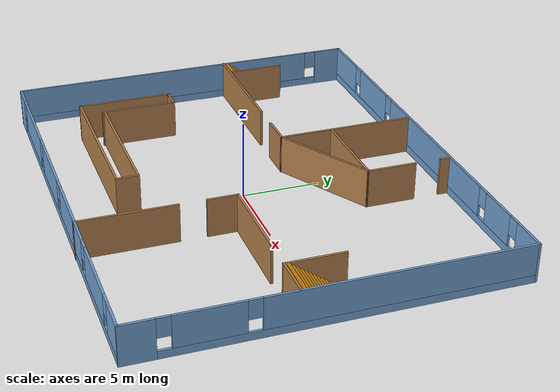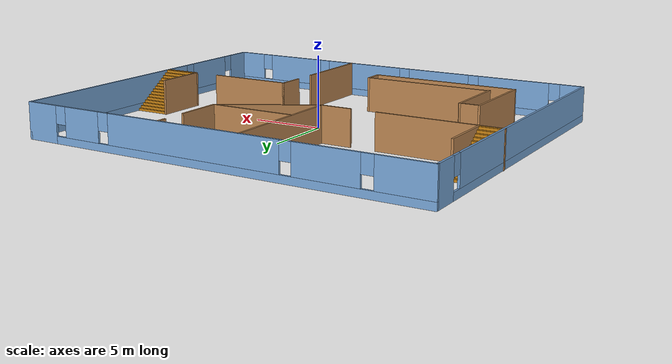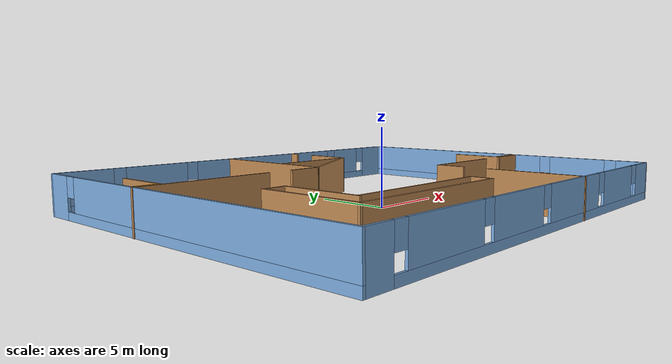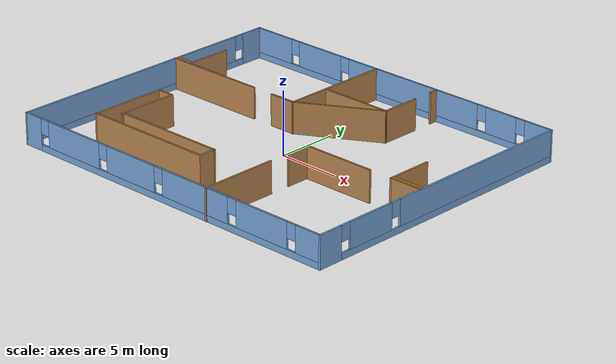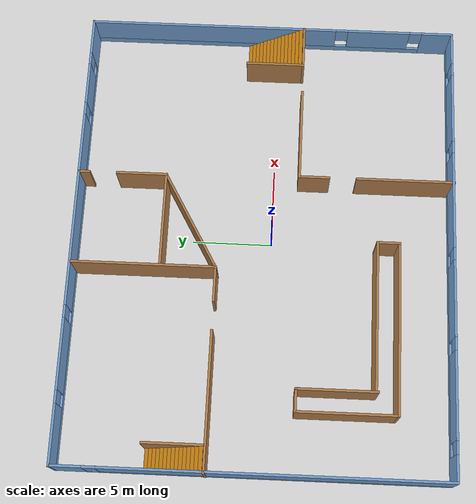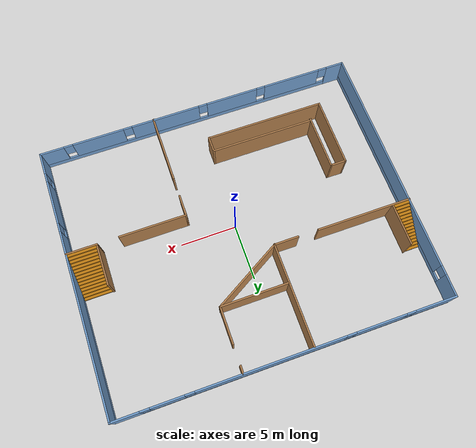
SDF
<?xml version='1.0'?>
<sdf version='1.6'>
  <model name='officeSpace1'>
    <pose frame=''>-0.177315 0.477884 0 0 -0 0</pose>
    <link name='Stairs_0'>
      <visual name='Stairs_0_Visual_0'>
        <pose frame=''>13.1278 1.44361 0.083333 0 -0 0</pose>
        <geometry>
          <box>
            <size>2.48543 0.236417 0.166667</size>
          </box>
        </geometry>
        <material>
          <script>
            <uri>file://media/materials/scripts/gazebo.material</uri>
            <name>Gazebo/Grey</name>
          </script>
          <ambient>0.756863 0.490196 0.0666667 1</ambient>
        </material>
        <meta>
          <layer>0</layer>
        </meta>
      </visual>
      <collision name='Stairs_0_Collision_0'>
        <geometry>
          <box>
            <size>2.48543 0.236417 0.166667</size>
          </box>
        </geometry>
        <pose frame=''>13.1278 1.44361 0.083333 0 -0 0</pose>
      </collision>
      <visual name='Stairs_0_Visual_1'>
        <pose frame=''>13.1278 1.20719 0.25 0 -0 0</pose>
        <geometry>
          <box>
            <size>2.48543 0.236417 0.166667</size>
          </box>
        </geometry>
        <material>
          <script>
            <uri>file://media/materials/scripts/gazebo.material</uri>
            <name>Gazebo/Grey</name>
          </script>
          <ambient>0.756863 0.490196 0.0666667 1</ambient>
        </material>
        <meta>
          <layer>0</layer>
        </meta>
      </visual>
      <collision name='Stairs_0_Collision_1'>
        <geometry>
          <box>
            <size>2.48543 0.236417 0.166667</size>
          </box>
        </geometry>
        <pose frame=''>13.1278 1.20719 0.25 0 -0 0</pose>
      </collision>
      <visual name='Stairs_0_Visual_2'>
        <pose frame=''>13.1278 0.97077 0.416667 0 -0 0</pose>
        <geometry>
          <box>
            <size>2.48543 0.236417 0.166667</size>
          </box>
        </geometry>
        <material>
          <script>
            <uri>file://media/materials/scripts/gazebo.material</uri>
            <name>Gazebo/Grey</name>
          </script>
          <ambient>0.756863 0.490196 0.0666667 1</ambient>
        </material>
        <meta>
          <layer>0</layer>
        </meta>
      </visual>
      <collision name='Stairs_0_Collision_2'>
        <geometry>
          <box>
            <size>2.48543 0.236417 0.166667</size>
          </box>
        </geometry>
        <pose frame=''>13.1278 0.97077 0.416667 0 -0 0</pose>
      </collision>
      <visual name='Stairs_0_Visual_3'>
        <pose frame=''>13.1278 0.734353 0.583333 0 -0 0</pose>
        <geometry>
          <box>
            <size>2.48543 0.236417 0.166667</size>
          </box>
        </geometry>
        <material>
          <script>
            <uri>file://media/materials/scripts/gazebo.material</uri>
            <name>Gazebo/Grey</name>
          </script>
          <ambient>0.756863 0.490196 0.0666667 1</ambient>
        </material>
        <meta>
          <layer>0</layer>
        </meta>
      </visual>
      <collision name='Stairs_0_Collision_3'>
        <geometry>
          <box>
            <size>2.48543 0.236417 0.166667</size>
          </box>
        </geometry>
        <pose frame=''>13.1278 0.734353 0.583333 0 -0 0</pose>
      </collision>
      <visual name='Stairs_0_Visual_4'>
        <pose frame=''>13.1278 0.497935 0.75 0 -0 0</pose>
        <geometry>
          <box>
            <size>2.48543 0.236417 0.166667</size>
          </box>
        </geometry>
        <material>
          <script>
            <uri>file://media/materials/scripts/gazebo.material</uri>
            <name>Gazebo/Grey</name>
          </script>
          <ambient>0.756863 0.490196 0.0666667 1</ambient>
        </material>
        <meta>
          <layer>0</layer>
        </meta>
      </visual>
      <collision name='Stairs_0_Collision_4'>
        <geometry>
          <box>
            <size>2.48543 0.236417 0.166667</size>
          </box>
        </geometry>
        <pose frame=''>13.1278 0.497935 0.75 0 -0 0</pose>
      </collision>
      <visual name='Stairs_0_Visual_5'>
        <pose frame=''>13.1278 0.261518 0.916667 0 -0 0</pose>
        <geometry>
          <box>
            <size>2.48543 0.236417 0.166667</size>
          </box>
        </geometry>
        <material>
          <script>
            <uri>file://media/materials/scripts/gazebo.material</uri>
            <name>Gazebo/Grey</name>
          </script>
          <ambient>0.756863 0.490196 0.0666667 1</ambient>
        </material>
        <meta>
          <layer>0</layer>
        </meta>
      </visual>
      <collision name='Stairs_0_Collision_5'>
        <geometry>
          <box>
            <size>2.48543 0.236417 0.166667</size>
          </box>
        </geometry>
        <pose frame=''>13.1278 0.261518 0.916667 0 -0 0</pose>
      </collision>
      <visual name='Stairs_0_Visual_6'>
        <pose frame=''>13.1278 0.0251 1.08333 0 -0 0</pose>
        <geometry>
          <box>
            <size>2.48543 0.236417 0.166667</size>
          </box>
        </geometry>
        <material>
          <script>
            <uri>file://media/materials/scripts/gazebo.material</uri>
            <name>Gazebo/Grey</name>
          </script>
          <ambient>0.756863 0.490196 0.0666667 1</ambient>
        </material>
        <meta>
          <layer>0</layer>
        </meta>
      </visual>
      <collision name='Stairs_0_Collision_6'>
        <geometry>
          <box>
            <size>2.48543 0.236417 0.166667</size>
          </box>
        </geometry>
        <pose frame=''>13.1278 0.0251 1.08333 0 -0 0</pose>
      </collision>
      <visual name='Stairs_0_Visual_7'>
        <pose frame=''>13.1278 -0.211317 1.25 0 -0 0</pose>
        <geometry>
          <box>
            <size>2.48543 0.236417 0.166667</size>
          </box>
        </geometry>
        <material>
          <script>
            <uri>file://media/materials/scripts/gazebo.material</uri>
            <name>Gazebo/Grey</name>
          </script>
          <ambient>0.756863 0.490196 0.0666667 1</ambient>
        </material>
        <meta>
          <layer>0</layer>
        </meta>
      </visual>
      <collision name='Stairs_0_Collision_7'>
        <geometry>
          <box>
            <size>2.48543 0.236417 0.166667</size>
          </box>
        </geometry>
        <pose frame=''>13.1278 -0.211317 1.25 0 -0 0</pose>
      </collision>
      <visual name='Stairs_0_Visual_8'>
        <pose frame=''>13.1278 -0.447735 1.41667 0 -0 0</pose>
        <geometry>
          <box>
            <size>2.48543 0.236417 0.166667</size>
          </box>
        </geometry>
        <material>
          <script>
            <uri>file://media/materials/scripts/gazebo.material</uri>
            <name>Gazebo/Grey</name>
          </script>
          <ambient>0.756863 0.490196 0.0666667 1</ambient>
        </material>
        <meta>
          <layer>0</layer>
        </meta>
      </visual>
      <collision name='Stairs_0_Collision_8'>
        <geometry>
          <box>
            <size>2.48543 0.236417 0.166667</size>
          </box>
        </geometry>
        <pose frame=''>13.1278 -0.447735 1.41667 0 -0 0</pose>
      </collision>
      <visual name='Stairs_0_Visual_9'>
        <pose frame=''>13.1278 -0.684152 1.58333 0 -0 0</pose>
        <geometry>
          <box>
            <size>2.48543 0.236417 0.166667</size>
          </box>
        </geometry>
        <material>
          <script>
            <uri>file://media/materials/scripts/gazebo.material</uri>
            <name>Gazebo/Grey</name>
          </script>
          <ambient>0.756863 0.490196 0.0666667 1</ambient>
        </material>
        <meta>
          <layer>0</layer>
        </meta>
      </visual>
      <collision name='Stairs_0_Collision_9'>
        <geometry>
          <box>
            <size>2.48543 0.236417 0.166667</size>
          </box>
        </geometry>
        <pose frame=''>13.1278 -0.684152 1.58333 0 -0 0</pose>
      </collision>
      <visual name='Stairs_0_Visual_10'>
        <pose frame=''>13.1278 -0.920569 1.75 0 -0 0</pose>
        <geometry>
          <box>
            <size>2.48543 0.236417 0.166667</size>
          </box>
        </geometry>
        <material>
          <script>
            <uri>file://media/materials/scripts/gazebo.material</uri>
            <name>Gazebo/Grey</name>
          </script>
          <ambient>0.756863 0.490196 0.0666667 1</ambient>
        </material>
        <meta>
          <layer>0</layer>
        </meta>
      </visual>
      <collision name='Stairs_0_Collision_10'>
        <geometry>
          <box>
            <size>2.48543 0.236417 0.166667</size>
          </box>
        </geometry>
        <pose frame=''>13.1278 -0.920569 1.75 0 -0 0</pose>
      </collision>
      <visual name='Stairs_0_Visual_11'>
        <pose frame=''>13.1278 -1.15699 1.91667 0 -0 0</pose>
        <geometry>
          <box>
            <size>2.48543 0.236417 0.166667</size>
          </box>
        </geometry>
        <material>
          <script>
            <uri>file://media/materials/scripts/gazebo.material</uri>
            <name>Gazebo/Grey</name>
          </script>
          <ambient>0.756863 0.490196 0.0666667 1</ambient>
        </material>
        <meta>
          <layer>0</layer>
        </meta>
      </visual>
      <collision name='Stairs_0_Collision_11'>
        <geometry>
          <box>
            <size>2.48543 0.236417 0.166667</size>
          </box>
        </geometry>
        <pose frame=''>13.1278 -1.15699 1.91667 0 -0 0</pose>
      </collision>
      <visual name='Stairs_0_Visual_12'>
        <pose frame=''>13.1278 -1.3934 2.08333 0 -0 0</pose>
        <geometry>
          <box>
            <size>2.48543 0.236417 0.166667</size>
          </box>
        </geometry>
        <material>
          <script>
            <uri>file://media/materials/scripts/gazebo.material</uri>
            <name>Gazebo/Grey</name>
          </script>
          <ambient>0.756863 0.490196 0.0666667 1</ambient>
        </material>
        <meta>
          <layer>0</layer>
        </meta>
      </visual>
      <collision name='Stairs_0_Collision_12'>
        <geometry>
          <box>
            <size>2.48543 0.236417 0.166667</size>
          </box>
        </geometry>
        <pose frame=''>13.1278 -1.3934 2.08333 0 -0 0</pose>
      </collision>
      <visual name='Stairs_0_Visual_13'>
        <pose frame=''>13.1278 -1.62982 2.25 0 -0 0</pose>
        <geometry>
          <box>
            <size>2.48543 0.236417 0.166667</size>
          </box>
        </geometry>
        <material>
          <script>
            <uri>file://media/materials/scripts/gazebo.material</uri>
            <name>Gazebo/Grey</name>
          </script>
          <ambient>0.756863 0.490196 0.0666667 1</ambient>
        </material>
        <meta>
          <layer>0</layer>
        </meta>
      </visual>
      <collision name='Stairs_0_Collision_13'>
        <geometry>
          <box>
            <size>2.48543 0.236417 0.166667</size>
          </box>
        </geometry>
        <pose frame=''>13.1278 -1.62982 2.25 0 -0 0</pose>
      </collision>
      <visual name='Stairs_0_Visual_14'>
        <pose frame=''>13.1278 -1.86624 2.41667 0 -0 0</pose>
        <geometry>
          <box>
            <size>2.48543 0.236417 0.166667</size>
          </box>
        </geometry>
        <material>
          <script>
            <uri>file://media/materials/scripts/gazebo.material</uri>
            <name>Gazebo/Grey</name>
          </script>
          <ambient>0.756863 0.490196 0.0666667 1</ambient>
        </material>
        <meta>
          <layer>0</layer>
        </meta>
      </visual>
      <collision name='Stairs_0_Collision_14'>
        <geometry>
          <box>
            <size>2.48543 0.236417 0.166667</size>
          </box>
        </geometry>
        <pose frame=''>13.1278 -1.86624 2.41667 0 -0 0</pose>
      </collision>
    </link>
    <link name='Stairs_1'>
      <visual name='Stairs_1_Visual_0'>
        <pose frame=''>-13.6441 6.47079 0.083333 0 -0 0</pose>
        <geometry>
          <box>
            <size>1.37009 0.242586 0.166667</size>
          </box>
        </geometry>
        <material>
          <script>
            <uri>file://media/materials/scripts/gazebo.material</uri>
            <name>Gazebo/Grey</name>
          </script>
          <ambient>0.756863 0.490196 0.0666667 1</ambient>
        </material>
        <meta>
          <layer>0</layer>
        </meta>
      </visual>
      <collision name='Stairs_1_Collision_0'>
        <geometry>
          <box>
            <size>1.37009 0.242586 0.166667</size>
          </box>
        </geometry>
        <pose frame=''>-13.6441 6.47079 0.083333 0 -0 0</pose>
      </collision>
      <visual name='Stairs_1_Visual_1'>
        <pose frame=''>-13.6441 6.2282 0.25 0 -0 0</pose>
        <geometry>
          <box>
            <size>1.37009 0.242586 0.166667</size>
          </box>
        </geometry>
        <material>
          <script>
            <uri>file://media/materials/scripts/gazebo.material</uri>
            <name>Gazebo/Grey</name>
          </script>
          <ambient>0.756863 0.490196 0.0666667 1</ambient>
        </material>
        <meta>
          <layer>0</layer>
        </meta>
      </visual>
      <collision name='Stairs_1_Collision_1'>
        <geometry>
          <box>
            <size>1.37009 0.242586 0.166667</size>
          </box>
        </geometry>
        <pose frame=''>-13.6441 6.2282 0.25 0 -0 0</pose>
      </collision>
      <visual name='Stairs_1_Visual_2'>
        <pose frame=''>-13.6441 5.98562 0.416667 0 -0 0</pose>
        <geometry>
          <box>
            <size>1.37009 0.242586 0.166667</size>
          </box>
        </geometry>
        <material>
          <script>
            <uri>file://media/materials/scripts/gazebo.material</uri>
            <name>Gazebo/Grey</name>
          </script>
          <ambient>0.756863 0.490196 0.0666667 1</ambient>
        </material>
        <meta>
          <layer>0</layer>
        </meta>
      </visual>
      <collision name='Stairs_1_Collision_2'>
        <geometry>
          <box>
            <size>1.37009 0.242586 0.166667</size>
          </box>
        </geometry>
        <pose frame=''>-13.6441 5.98562 0.416667 0 -0 0</pose>
      </collision>
      <visual name='Stairs_1_Visual_3'>
        <pose frame=''>-13.6441 5.74303 0.583333 0 -0 0</pose>
        <geometry>
          <box>
            <size>1.37009 0.242586 0.166667</size>
          </box>
        </geometry>
        <material>
          <script>
            <uri>file://media/materials/scripts/gazebo.material</uri>
            <name>Gazebo/Grey</name>
          </script>
          <ambient>0.756863 0.490196 0.0666667 1</ambient>
        </material>
        <meta>
          <layer>0</layer>
        </meta>
      </visual>
      <collision name='Stairs_1_Collision_3'>
        <geometry>
          <box>
            <size>1.37009 0.242586 0.166667</size>
          </box>
        </geometry>
        <pose frame=''>-13.6441 5.74303 0.583333 0 -0 0</pose>
      </collision>
      <visual name='Stairs_1_Visual_4'>
        <pose frame=''>-13.6441 5.50045 0.75 0 -0 0</pose>
        <geometry>
          <box>
            <size>1.37009 0.242586 0.166667</size>
          </box>
        </geometry>
        <material>
          <script>
            <uri>file://media/materials/scripts/gazebo.material</uri>
            <name>Gazebo/Grey</name>
          </script>
          <ambient>0.756863 0.490196 0.0666667 1</ambient>
        </material>
        <meta>
          <layer>0</layer>
        </meta>
      </visual>
      <collision name='Stairs_1_Collision_4'>
        <geometry>
          <box>
            <size>1.37009 0.242586 0.166667</size>
          </box>
        </geometry>
        <pose frame=''>-13.6441 5.50045 0.75 0 -0 0</pose>
      </collision>
      <visual name='Stairs_1_Visual_5'>
        <pose frame=''>-13.6441 5.25786 0.916667 0 -0 0</pose>
        <geometry>
          <box>
            <size>1.37009 0.242586 0.166667</size>
          </box>
        </geometry>
        <material>
          <script>
            <uri>file://media/materials/scripts/gazebo.material</uri>
            <name>Gazebo/Grey</name>
          </script>
          <ambient>0.756863 0.490196 0.0666667 1</ambient>
        </material>
        <meta>
          <layer>0</layer>
        </meta>
      </visual>
      <collision name='Stairs_1_Collision_5'>
        <geometry>
          <box>
            <size>1.37009 0.242586 0.166667</size>
          </box>
        </geometry>
        <pose frame=''>-13.6441 5.25786 0.916667 0 -0 0</pose>
      </collision>
      <visual name='Stairs_1_Visual_6'>
        <pose frame=''>-13.6441 5.01528 1.08333 0 -0 0</pose>
        <geometry>
          <box>
            <size>1.37009 0.242586 0.166667</size>
          </box>
        </geometry>
        <material>
          <script>
            <uri>file://media/materials/scripts/gazebo.material</uri>
            <name>Gazebo/Grey</name>
          </script>
          <ambient>0.756863 0.490196 0.0666667 1</ambient>
        </material>
        <meta>
          <layer>0</layer>
        </meta>
      </visual>
      <collision name='Stairs_1_Collision_6'>
        <geometry>
          <box>
            <size>1.37009 0.242586 0.166667</size>
          </box>
        </geometry>
        <pose frame=''>-13.6441 5.01528 1.08333 0 -0 0</pose>
      </collision>
      <visual name='Stairs_1_Visual_7'>
        <pose frame=''>-13.6441 4.77269 1.25 0 -0 0</pose>
        <geometry>
          <box>
            <size>1.37009 0.242586 0.166667</size>
          </box>
        </geometry>
        <material>
          <script>
            <uri>file://media/materials/scripts/gazebo.material</uri>
            <name>Gazebo/Grey</name>
          </script>
          <ambient>0.756863 0.490196 0.0666667 1</ambient>
        </material>
        <meta>
          <layer>0</layer>
        </meta>
      </visual>
      <collision name='Stairs_1_Collision_7'>
        <geometry>
          <box>
            <size>1.37009 0.242586 0.166667</size>
          </box>
        </geometry>
        <pose frame=''>-13.6441 4.77269 1.25 0 -0 0</pose>
      </collision>
      <visual name='Stairs_1_Visual_8'>
        <pose frame=''>-13.6441 4.53011 1.41667 0 -0 0</pose>
        <geometry>
          <box>
            <size>1.37009 0.242586 0.166667</size>
          </box>
        </geometry>
        <material>
          <script>
            <uri>file://media/materials/scripts/gazebo.material</uri>
            <name>Gazebo/Grey</name>
          </script>
          <ambient>0.756863 0.490196 0.0666667 1</ambient>
        </material>
        <meta>
          <layer>0</layer>
        </meta>
      </visual>
      <collision name='Stairs_1_Collision_8'>
        <geometry>
          <box>
            <size>1.37009 0.242586 0.166667</size>
          </box>
        </geometry>
        <pose frame=''>-13.6441 4.53011 1.41667 0 -0 0</pose>
      </collision>
      <visual name='Stairs_1_Visual_9'>
        <pose frame=''>-13.6441 4.28752 1.58333 0 -0 0</pose>
        <geometry>
          <box>
            <size>1.37009 0.242586 0.166667</size>
          </box>
        </geometry>
        <material>
          <script>
            <uri>file://media/materials/scripts/gazebo.material</uri>
            <name>Gazebo/Grey</name>
          </script>
          <ambient>0.756863 0.490196 0.0666667 1</ambient>
        </material>
        <meta>
          <layer>0</layer>
        </meta>
      </visual>
      <collision name='Stairs_1_Collision_9'>
        <geometry>
          <box>
            <size>1.37009 0.242586 0.166667</size>
          </box>
        </geometry>
        <pose frame=''>-13.6441 4.28752 1.58333 0 -0 0</pose>
      </collision>
      <visual name='Stairs_1_Visual_10'>
        <pose frame=''>-13.6441 4.04493 1.75 0 -0 0</pose>
        <geometry>
          <box>
            <size>1.37009 0.242586 0.166667</size>
          </box>
        </geometry>
        <material>
          <script>
            <uri>file://media/materials/scripts/gazebo.material</uri>
            <name>Gazebo/Grey</name>
          </script>
          <ambient>0.756863 0.490196 0.0666667 1</ambient>
        </material>
        <meta>
          <layer>0</layer>
        </meta>
      </visual>
      <collision name='Stairs_1_Collision_10'>
        <geometry>
          <box>
            <size>1.37009 0.242586 0.166667</size>
          </box>
        </geometry>
        <pose frame=''>-13.6441 4.04493 1.75 0 -0 0</pose>
      </collision>
      <visual name='Stairs_1_Visual_11'>
        <pose frame=''>-13.6441 3.80235 1.91667 0 -0 0</pose>
        <geometry>
          <box>
            <size>1.37009 0.242586 0.166667</size>
          </box>
        </geometry>
        <material>
          <script>
            <uri>file://media/materials/scripts/gazebo.material</uri>
            <name>Gazebo/Grey</name>
          </script>
          <ambient>0.756863 0.490196 0.0666667 1</ambient>
        </material>
        <meta>
          <layer>0</layer>
        </meta>
      </visual>
      <collision name='Stairs_1_Collision_11'>
        <geometry>
          <box>
            <size>1.37009 0.242586 0.166667</size>
          </box>
        </geometry>
        <pose frame=''>-13.6441 3.80235 1.91667 0 -0 0</pose>
      </collision>
      <visual name='Stairs_1_Visual_12'>
        <pose frame=''>-13.6441 3.55976 2.08333 0 -0 0</pose>
        <geometry>
          <box>
            <size>1.37009 0.242586 0.166667</size>
          </box>
        </geometry>
        <material>
          <script>
            <uri>file://media/materials/scripts/gazebo.material</uri>
            <name>Gazebo/Grey</name>
          </script>
          <ambient>0.756863 0.490196 0.0666667 1</ambient>
        </material>
        <meta>
          <layer>0</layer>
        </meta>
      </visual>
      <collision name='Stairs_1_Collision_12'>
        <geometry>
          <box>
            <size>1.37009 0.242586 0.166667</size>
          </box>
        </geometry>
        <pose frame=''>-13.6441 3.55976 2.08333 0 -0 0</pose>
      </collision>
      <visual name='Stairs_1_Visual_13'>
        <pose frame=''>-13.6441 3.31718 2.25 0 -0 0</pose>
        <geometry>
          <box>
            <size>1.37009 0.242586 0.166667</size>
          </box>
        </geometry>
        <material>
          <script>
            <uri>file://media/materials/scripts/gazebo.material</uri>
            <name>Gazebo/Grey</name>
          </script>
          <ambient>0.756863 0.490196 0.0666667 1</ambient>
        </material>
        <meta>
          <layer>0</layer>
        </meta>
      </visual>
      <collision name='Stairs_1_Collision_13'>
        <geometry>
          <box>
            <size>1.37009 0.242586 0.166667</size>
          </box>
        </geometry>
        <pose frame=''>-13.6441 3.31718 2.25 0 -0 0</pose>
      </collision>
      <visual name='Stairs_1_Visual_14'>
        <pose frame=''>-13.6441 3.07459 2.41667 0 -0 0</pose>
        <geometry>
          <box>
            <size>1.37009 0.242586 0.166667</size>
          </box>
        </geometry>
        <material>
          <script>
            <uri>file://media/materials/scripts/gazebo.material</uri>
            <name>Gazebo/Grey</name>
          </script>
          <ambient>0.756863 0.490196 0.0666667 1</ambient>
        </material>
        <meta>
          <layer>0</layer>
        </meta>
      </visual>
      <collision name='Stairs_1_Collision_14'>
        <geometry>
          <box>
            <size>1.37009 0.242586 0.166667</size>
          </box>
        </geometry>
        <pose frame=''>-13.6441 3.07459 2.41667 0 -0 0</pose>
      </collision>
    </link>
    <link name='Wall_15'>
      <pose frame=''>0.019773 -11.7779 0 0 -0 0</pose>
      <visual name='Wall_15_Visual_0'>
        <pose frame=''>-13.6565 0 1.25 0 -0 0</pose>
        <geometry>
          <box>
            <size>1.68692 0.15 2.5</size>
          </box>
        </geometry>
        <material>
          <script>
            <uri>file://media/materials/scripts/gazebo.material</uri>
            <name>Gazebo/Grey</name>
          </script>
          <ambient>0.447059 0.623529 0.811765 1</ambient>
        </material>
        <meta>
          <layer>0</layer>
        </meta>
      </visual>
      <collision name='Wall_15_Collision_0'>
        <geometry>
          <box>
            <size>1.68692 0.15 2.5</size>
          </box>
        </geometry>
        <pose frame=''>-13.6565 0 1.25 0 -0 0</pose>
      </collision>
      <visual name='Wall_15_Visual_1'>
        <pose frame=''>0.84346 0 0.25 0 -0 0</pose>
        <geometry>
          <box>
            <size>27.3131 0.15 0.5</size>
          </box>
        </geometry>
        <material>
          <script>
            <uri>file://media/materials/scripts/gazebo.material</uri>
            <name>Gazebo/Grey</name>
          </script>
          <ambient>0.447059 0.623529 0.811765 1</ambient>
        </material>
        <meta>
          <layer>0</layer>
        </meta>
      </visual>
      <collision name='Wall_15_Collision_1'>
        <geometry>
          <box>
            <size>27.3131 0.15 0.5</size>
          </box>
        </geometry>
        <pose frame=''>0.84346 0 0.25 0 -0 0</pose>
      </collision>
      <visual name='Wall_15_Visual_2'>
        <pose frame=''>-9.34337 0 1.5 0 -0 0</pose>
        <geometry>
          <box>
            <size>5.33941 0.15 2</size>
          </box>
        </geometry>
        <material>
          <script>
            <uri>file://media/materials/scripts/gazebo.material</uri>
            <name>Gazebo/Grey</name>
          </script>
          <ambient>0.447059 0.623529 0.811765 1</ambient>
        </material>
        <meta>
          <layer>0</layer>
        </meta>
      </visual>
      <collision name='Wall_15_Collision_2'>
        <geometry>
          <box>
            <size>5.33941 0.15 2</size>
          </box>
        </geometry>
        <pose frame=''>-9.34337 0 1.5 0 -0 0</pose>
      </collision>
      <visual name='Wall_15_Visual_3'>
        <pose frame=''>-3.46479 0 1.5 0 -0 0</pose>
        <geometry>
          <box>
            <size>4.81776 0.15 2</size>
          </box>
        </geometry>
        <material>
          <script>
            <uri>file://media/materials/scripts/gazebo.material</uri>
            <name>Gazebo/Grey</name>
          </script>
          <ambient>0.447059 0.623529 0.811765 1</ambient>
        </material>
        <meta>
          <layer>0</layer>
        </meta>
      </visual>
      <collision name='Wall_15_Collision_3'>
        <geometry>
          <box>
            <size>4.81776 0.15 2</size>
          </box>
        </geometry>
        <pose frame=''>-3.46479 0 1.5 0 -0 0</pose>
      </collision>
      <visual name='Wall_15_Visual_4'>
        <pose frame=''>2.89532 0 1.5 0 -0 0</pose>
        <geometry>
          <box>
            <size>6.30246 0.15 2</size>
          </box>
        </geometry>
        <material>
          <script>
            <uri>file://media/materials/scripts/gazebo.material</uri>
            <name>Gazebo/Grey</name>
          </script>
          <ambient>0.447059 0.623529 0.811765 1</ambient>
        </material>
        <meta>
          <layer>0</layer>
        </meta>
      </visual>
      <collision name='Wall_15_Collision_4'>
        <geometry>
          <box>
            <size>6.30246 0.15 2</size>
          </box>
        </geometry>
        <pose frame=''>2.89532 0 1.5 0 -0 0</pose>
      </collision>
      <visual name='Wall_15_Visual_5'>
        <pose frame=''>9.17518 0 1.5 0 -0 0</pose>
        <geometry>
          <box>
            <size>4.65726 0.15 2</size>
          </box>
        </geometry>
        <material>
          <script>
            <uri>file://media/materials/scripts/gazebo.material</uri>
            <name>Gazebo/Grey</name>
          </script>
          <ambient>0.447059 0.623529 0.811765 1</ambient>
        </material>
        <meta>
          <layer>0</layer>
        </meta>
      </visual>
      <collision name='Wall_15_Collision_5'>
        <geometry>
          <box>
            <size>4.65726 0.15 2</size>
          </box>
        </geometry>
        <pose frame=''>9.17518 0 1.5 0 -0 0</pose>
      </collision>
      <visual name='Wall_15_Visual_6'>
        <pose frame=''>13.4019 0 1.5 0 -0 0</pose>
        <geometry>
          <box>
            <size>2.19619 0.15 2</size>
          </box>
        </geometry>
        <material>
          <script>
            <uri>file://media/materials/scripts/gazebo.material</uri>
            <name>Gazebo/Grey</name>
          </script>
          <ambient>0.447059 0.623529 0.811765 1</ambient>
        </material>
        <meta>
          <layer>0</layer>
        </meta>
      </visual>
      <collision name='Wall_15_Collision_6'>
        <geometry>
          <box>
            <size>2.19619 0.15 2</size>
          </box>
        </geometry>
        <pose frame=''>13.4019 0 1.5 0 -0 0</pose>
      </collision>
      <visual name='Wall_15_Visual_7'>
        <pose frame=''>-12.4131 0 1.9 0 -0 0</pose>
        <geometry>
          <box>
            <size>0.8 0.15 1.2</size>
          </box>
        </geometry>
        <material>
          <script>
            <uri>file://media/materials/scripts/gazebo.material</uri>
            <name>Gazebo/Grey</name>
          </script>
          <ambient>0.447059 0.623529 0.811765 1</ambient>
        </material>
        <meta>
          <layer>0</layer>
        </meta>
      </visual>
      <collision name='Wall_15_Collision_7'>
        <geometry>
          <box>
            <size>0.8 0.15 1.2</size>
          </box>
        </geometry>
        <pose frame=''>-12.4131 0 1.9 0 -0 0</pose>
      </collision>
      <visual name='Wall_15_Visual_8'>
        <pose frame=''>-6.27367 0 1.9 0 -0 0</pose>
        <geometry>
          <box>
            <size>0.8 0.15 1.2</size>
          </box>
        </geometry>
        <material>
          <script>
            <uri>file://media/materials/scripts/gazebo.material</uri>
            <name>Gazebo/Grey</name>
          </script>
          <ambient>0.447059 0.623529 0.811765 1</ambient>
        </material>
        <meta>
          <layer>0</layer>
        </meta>
      </visual>
      <collision name='Wall_15_Collision_8'>
        <geometry>
          <box>
            <size>0.8 0.15 1.2</size>
          </box>
        </geometry>
        <pose frame=''>-6.27367 0 1.9 0 -0 0</pose>
      </collision>
      <visual name='Wall_15_Visual_9'>
        <pose frame=''>-0.655904 0 1.9 0 -0 0</pose>
        <geometry>
          <box>
            <size>0.8 0.15 1.2</size>
          </box>
        </geometry>
        <material>
          <script>
            <uri>file://media/materials/scripts/gazebo.material</uri>
            <name>Gazebo/Grey</name>
          </script>
          <ambient>0.447059 0.623529 0.811765 1</ambient>
        </material>
        <meta>
          <layer>0</layer>
        </meta>
      </visual>
      <collision name='Wall_15_Collision_9'>
        <geometry>
          <box>
            <size>0.8 0.15 1.2</size>
          </box>
        </geometry>
        <pose frame=''>-0.655904 0 1.9 0 -0 0</pose>
      </collision>
      <visual name='Wall_15_Visual_10'>
        <pose frame=''>6.44655 0 1.9 0 -0 0</pose>
        <geometry>
          <box>
            <size>0.8 0.15 1.2</size>
          </box>
        </geometry>
        <material>
          <script>
            <uri>file://media/materials/scripts/gazebo.material</uri>
            <name>Gazebo/Grey</name>
          </script>
          <ambient>0.447059 0.623529 0.811765 1</ambient>
        </material>
        <meta>
          <layer>0</layer>
        </meta>
      </visual>
      <collision name='Wall_15_Collision_10'>
        <geometry>
          <box>
            <size>0.8 0.15 1.2</size>
          </box>
        </geometry>
        <pose frame=''>6.44655 0 1.9 0 -0 0</pose>
      </collision>
      <visual name='Wall_15_Visual_11'>
        <pose frame=''>11.9038 0 1.9 0 -0 0</pose>
        <geometry>
          <box>
            <size>0.8 0.15 1.2</size>
          </box>
        </geometry>
        <material>
          <script>
            <uri>file://media/materials/scripts/gazebo.material</uri>
            <name>Gazebo/Grey</name>
          </script>
          <ambient>0.447059 0.623529 0.811765 1</ambient>
        </material>
        <meta>
          <layer>0</layer>
        </meta>
      </visual>
      <collision name='Wall_15_Collision_11'>
        <geometry>
          <box>
            <size>0.8 0.15 1.2</size>
          </box>
        </geometry>
        <pose frame=''>11.9038 0 1.9 0 -0 0</pose>
      </collision>
    </link>
    <link name='Wall_16'>
      <pose frame=''>14.4448 0.022067 0 0 -0 1.5708</pose>
      <visual name='Wall_16_Visual_0'>
        <pose frame=''>-10.8556 0 1.25 0 -0 0</pose>
        <geometry>
          <box>
            <size>2.03884 0.15 2.5</size>
          </box>
        </geometry>
        <material>
          <script>
            <uri>file://media/materials/scripts/gazebo.material</uri>
            <name>Gazebo/Grey</name>
          </script>
          <ambient>0.447059 0.623529 0.811765 1</ambient>
        </material>
        <meta>
          <layer>0</layer>
        </meta>
      </visual>
      <collision name='Wall_16_Collision_0'>
        <geometry>
          <box>
            <size>2.03884 0.15 2.5</size>
          </box>
        </geometry>
        <pose frame=''>-10.8556 0 1.25 0 -0 0</pose>
      </collision>
      <visual name='Wall_16_Visual_1'>
        <pose frame=''>1.01942 0 0.25 0 -0 0</pose>
        <geometry>
          <box>
            <size>21.7112 0.15 0.5</size>
          </box>
        </geometry>
        <material>
          <script>
            <uri>file://media/materials/scripts/gazebo.material</uri>
            <name>Gazebo/Grey</name>
          </script>
          <ambient>0.447059 0.623529 0.811765 1</ambient>
        </material>
        <meta>
          <layer>0</layer>
        </meta>
      </visual>
      <collision name='Wall_16_Collision_1'>
        <geometry>
          <box>
            <size>21.7112 0.15 0.5</size>
          </box>
        </geometry>
        <pose frame=''>1.01942 0 0.25 0 -0 0</pose>
      </collision>
      <visual name='Wall_16_Visual_2'>
        <pose frame=''>-7.00849 0 1.5 0 -0 0</pose>
        <geometry>
          <box>
            <size>4.05535 0.15 2</size>
          </box>
        </geometry>
        <material>
          <script>
            <uri>file://media/materials/scripts/gazebo.material</uri>
            <name>Gazebo/Grey</name>
          </script>
          <ambient>0.447059 0.623529 0.811765 1</ambient>
        </material>
        <meta>
          <layer>0</layer>
        </meta>
      </visual>
      <collision name='Wall_16_Collision_2'>
        <geometry>
          <box>
            <size>4.05535 0.15 2</size>
          </box>
        </geometry>
        <pose frame=''>-7.00849 0 1.5 0 -0 0</pose>
      </collision>
      <visual name='Wall_16_Visual_3'>
        <pose frame=''>3.84709 0 1.5 0 -0 0</pose>
        <geometry>
          <box>
            <size>16.0558 0.15 2</size>
          </box>
        </geometry>
        <material>
          <script>
            <uri>file://media/materials/scripts/gazebo.material</uri>
            <name>Gazebo/Grey</name>
          </script>
          <ambient>0.447059 0.623529 0.811765 1</ambient>
        </material>
        <meta>
          <layer>0</layer>
        </meta>
      </visual>
      <collision name='Wall_16_Collision_3'>
        <geometry>
          <box>
            <size>16.0558 0.15 2</size>
          </box>
        </geometry>
        <pose frame=''>3.84709 0 1.5 0 -0 0</pose>
      </collision>
      <visual name='Wall_16_Visual_4'>
        <pose frame=''>-9.43617 0 1.9 0 -0 0</pose>
        <geometry>
          <box>
            <size>0.8 0.15 1.2</size>
          </box>
        </geometry>
        <material>
          <script>
            <uri>file://media/materials/scripts/gazebo.material</uri>
            <name>Gazebo/Grey</name>
          </script>
          <ambient>0.447059 0.623529 0.811765 1</ambient>
        </material>
        <meta>
          <layer>0</layer>
        </meta>
      </visual>
      <collision name='Wall_16_Collision_4'>
        <geometry>
          <box>
            <size>0.8 0.15 1.2</size>
          </box>
        </geometry>
        <pose frame=''>-9.43617 0 1.9 0 -0 0</pose>
      </collision>
      <visual name='Wall_16_Visual_5'>
        <pose frame=''>-4.58081 0 1.9 0 -0 0</pose>
        <geometry>
          <box>
            <size>0.8 0.15 1.2</size>
          </box>
        </geometry>
        <material>
          <script>
            <uri>file://media/materials/scripts/gazebo.material</uri>
            <name>Gazebo/Grey</name>
          </script>
          <ambient>0.447059 0.623529 0.811765 1</ambient>
        </material>
        <meta>
          <layer>0</layer>
        </meta>
      </visual>
      <collision name='Wall_16_Collision_5'>
        <geometry>
          <box>
            <size>0.8 0.15 1.2</size>
          </box>
        </geometry>
        <pose frame=''>-4.58081 0 1.9 0 -0 0</pose>
      </collision>
    </link>
    <link name='Wall_17'>
      <pose frame=''>0.019773 11.8221 0 0 -0 3.14159</pose>
      <visual name='Wall_17_Visual_0'>
        <pose frame=''>-13.3016 0 1.25 0 -0 0</pose>
        <geometry>
          <box>
            <size>2.39683 0.15 2.5</size>
          </box>
        </geometry>
        <material>
          <script>
            <uri>file://media/materials/scripts/gazebo.material</uri>
            <name>Gazebo/Grey</name>
          </script>
          <ambient>0.447059 0.623529 0.811765 1</ambient>
        </material>
        <meta>
          <layer>0</layer>
        </meta>
      </visual>
      <collision name='Wall_17_Collision_0'>
        <geometry>
          <box>
            <size>2.39683 0.15 2.5</size>
          </box>
        </geometry>
        <pose frame=''>-13.3016 0 1.25 0 -0 0</pose>
      </collision>
      <visual name='Wall_17_Visual_1'>
        <pose frame=''>1.19841 0 0.25 0 -0 0</pose>
        <geometry>
          <box>
            <size>26.6032 0.15 0.5</size>
          </box>
        </geometry>
        <material>
          <script>
            <uri>file://media/materials/scripts/gazebo.material</uri>
            <name>Gazebo/Grey</name>
          </script>
          <ambient>0.447059 0.623529 0.811765 1</ambient>
        </material>
        <meta>
          <layer>0</layer>
        </meta>
      </visual>
      <collision name='Wall_17_Collision_1'>
        <geometry>
          <box>
            <size>26.6032 0.15 0.5</size>
          </box>
        </geometry>
        <pose frame=''>1.19841 0 0.25 0 -0 0</pose>
      </collision>
      <visual name='Wall_17_Visual_2'>
        <pose frame=''>-9.91753 0 1.5 0 -0 0</pose>
        <geometry>
          <box>
            <size>2.77129 0.15 2</size>
          </box>
        </geometry>
        <material>
          <script>
            <uri>file://media/materials/scripts/gazebo.material</uri>
            <name>Gazebo/Grey</name>
          </script>
          <ambient>0.447059 0.623529 0.811765 1</ambient>
        </material>
        <meta>
          <layer>0</layer>
        </meta>
      </visual>
      <collision name='Wall_17_Collision_2'>
        <geometry>
          <box>
            <size>2.77129 0.15 2</size>
          </box>
        </geometry>
        <pose frame=''>-9.91753 0 1.5 0 -0 0</pose>
      </collision>
      <visual name='Wall_17_Visual_3'>
        <pose frame=''>-1.42429 0 1.5 0 -0 0</pose>
        <geometry>
          <box>
            <size>12.6152 0.15 2</size>
          </box>
        </geometry>
        <material>
          <script>
            <uri>file://media/materials/scripts/gazebo.material</uri>
            <name>Gazebo/Grey</name>
          </script>
          <ambient>0.447059 0.623529 0.811765 1</ambient>
        </material>
        <meta>
          <layer>0</layer>
        </meta>
      </visual>
      <collision name='Wall_17_Collision_3'>
        <geometry>
          <box>
            <size>12.6152 0.15 2</size>
          </box>
        </geometry>
        <pose frame=''>-1.42429 0 1.5 0 -0 0</pose>
      </collision>
      <visual name='Wall_17_Visual_4'>
        <pose frame=''>7.86509 0 1.5 0 -0 0</pose>
        <geometry>
          <box>
            <size>4.36355 0.15 2</size>
          </box>
        </geometry>
        <material>
          <script>
            <uri>file://media/materials/scripts/gazebo.material</uri>
            <name>Gazebo/Grey</name>
          </script>
          <ambient>0.447059 0.623529 0.811765 1</ambient>
        </material>
        <meta>
          <layer>0</layer>
        </meta>
      </visual>
      <collision name='Wall_17_Collision_4'>
        <geometry>
          <box>
            <size>4.36355 0.15 2</size>
          </box>
        </geometry>
        <pose frame=''>7.86509 0 1.5 0 -0 0</pose>
      </collision>
      <visual name='Wall_17_Visual_5'>
        <pose frame=''>12.6734 0 1.5 0 -0 0</pose>
        <geometry>
          <box>
            <size>3.65314 0.15 2</size>
          </box>
        </geometry>
        <material>
          <script>
            <uri>file://media/materials/scripts/gazebo.material</uri>
            <name>Gazebo/Grey</name>
          </script>
          <ambient>0.447059 0.623529 0.811765 1</ambient>
        </material>
        <meta>
          <layer>0</layer>
        </meta>
      </visual>
      <collision name='Wall_17_Collision_5'>
        <geometry>
          <box>
            <size>3.65314 0.15 2</size>
          </box>
        </geometry>
        <pose frame=''>12.6734 0 1.5 0 -0 0</pose>
      </collision>
      <visual name='Wall_17_Visual_6'>
        <pose frame=''>-11.7032 0 1.9 0 -0 0</pose>
        <geometry>
          <box>
            <size>0.8 0.15 1.2</size>
          </box>
        </geometry>
        <material>
          <script>
            <uri>file://media/materials/scripts/gazebo.material</uri>
            <name>Gazebo/Grey</name>
          </script>
          <ambient>0.447059 0.623529 0.811765 1</ambient>
        </material>
        <meta>
          <layer>0</layer>
        </meta>
      </visual>
      <collision name='Wall_17_Collision_6'>
        <geometry>
          <box>
            <size>0.8 0.15 1.2</size>
          </box>
        </geometry>
        <pose frame=''>-11.7032 0 1.9 0 -0 0</pose>
      </collision>
      <visual name='Wall_17_Visual_7'>
        <pose frame=''>-8.13188 0 1.9 0 -0 0</pose>
        <geometry>
          <box>
            <size>0.8 0.15 1.2</size>
          </box>
        </geometry>
        <material>
          <script>
            <uri>file://media/materials/scripts/gazebo.material</uri>
            <name>Gazebo/Grey</name>
          </script>
          <ambient>0.447059 0.623529 0.811765 1</ambient>
        </material>
        <meta>
          <layer>0</layer>
        </meta>
      </visual>
      <collision name='Wall_17_Collision_7'>
        <geometry>
          <box>
            <size>0.8 0.15 1.2</size>
          </box>
        </geometry>
        <pose frame=''>-8.13188 0 1.9 0 -0 0</pose>
      </collision>
      <visual name='Wall_17_Visual_8'>
        <pose frame=''>5.28331 0 1.9 0 -0 0</pose>
        <geometry>
          <box>
            <size>0.8 0.15 1.2</size>
          </box>
        </geometry>
        <material>
          <script>
            <uri>file://media/materials/scripts/gazebo.material</uri>
            <name>Gazebo/Grey</name>
          </script>
          <ambient>0.447059 0.623529 0.811765 1</ambient>
        </material>
        <meta>
          <layer>0</layer>
        </meta>
      </visual>
      <collision name='Wall_17_Collision_8'>
        <geometry>
          <box>
            <size>0.8 0.15 1.2</size>
          </box>
        </geometry>
        <pose frame=''>5.28331 0 1.9 0 -0 0</pose>
      </collision>
      <visual name='Wall_17_Visual_9'>
        <pose frame=''>10.4469 0 1.9 0 -0 0</pose>
        <geometry>
          <box>
            <size>0.8 0.15 1.2</size>
          </box>
        </geometry>
        <material>
          <script>
            <uri>file://media/materials/scripts/gazebo.material</uri>
            <name>Gazebo/Grey</name>
          </script>
          <ambient>0.447059 0.623529 0.811765 1</ambient>
        </material>
        <meta>
          <layer>0</layer>
        </meta>
      </visual>
      <collision name='Wall_17_Collision_9'>
        <geometry>
          <box>
            <size>0.8 0.15 1.2</size>
          </box>
        </geometry>
        <pose frame=''>10.4469 0 1.9 0 -0 0</pose>
      </collision>
    </link>
    <link name='Wall_18'>
      <pose frame=''>-14.4052 0.022067 0 0 -0 -1.5708</pose>
      <visual name='Wall_18_Visual_0'>
        <pose frame=''>-10.8894 0 1.25 0 -0 0</pose>
        <geometry>
          <box>
            <size>1.97128 0.15 2.5</size>
          </box>
        </geometry>
        <material>
          <script>
            <uri>file://media/materials/scripts/gazebo.material</uri>
            <name>Gazebo/Grey</name>
          </script>
          <ambient>0.447059 0.623529 0.811765 1</ambient>
        </material>
        <meta>
          <layer>0</layer>
        </meta>
      </visual>
      <collision name='Wall_18_Collision_0'>
        <geometry>
          <box>
            <size>1.97128 0.15 2.5</size>
          </box>
        </geometry>
        <pose frame=''>-10.8894 0 1.25 0 -0 0</pose>
      </collision>
      <visual name='Wall_18_Visual_1'>
        <pose frame=''>0.98564 0 0.25 0 -0 0</pose>
        <geometry>
          <box>
            <size>21.7787 0.15 0.5</size>
          </box>
        </geometry>
        <material>
          <script>
            <uri>file://media/materials/scripts/gazebo.material</uri>
            <name>Gazebo/Grey</name>
          </script>
          <ambient>0.447059 0.623529 0.811765 1</ambient>
        </material>
        <meta>
          <layer>0</layer>
        </meta>
      </visual>
      <collision name='Wall_18_Collision_1'>
        <geometry>
          <box>
            <size>21.7787 0.15 0.5</size>
          </box>
        </geometry>
        <pose frame=''>0.98564 0 0.25 0 -0 0</pose>
      </collision>
      <visual name='Wall_18_Visual_2'>
        <pose frame=''>1.38564 0 1.5 0 -0 0</pose>
        <geometry>
          <box>
            <size>20.9787 0.15 2</size>
          </box>
        </geometry>
        <material>
          <script>
            <uri>file://media/materials/scripts/gazebo.material</uri>
            <name>Gazebo/Grey</name>
          </script>
          <ambient>0.447059 0.623529 0.811765 1</ambient>
        </material>
        <meta>
          <layer>0</layer>
        </meta>
      </visual>
      <collision name='Wall_18_Collision_2'>
        <geometry>
          <box>
            <size>20.9787 0.15 2</size>
          </box>
        </geometry>
        <pose frame=''>1.38564 0 1.5 0 -0 0</pose>
      </collision>
      <visual name='Wall_18_Visual_3'>
        <pose frame=''>-9.50372 0 1.9 0 -0 0</pose>
        <geometry>
          <box>
            <size>0.8 0.15 1.2</size>
          </box>
        </geometry>
        <material>
          <script>
            <uri>file://media/materials/scripts/gazebo.material</uri>
            <name>Gazebo/Grey</name>
          </script>
          <ambient>0.447059 0.623529 0.811765 1</ambient>
        </material>
        <meta>
          <layer>0</layer>
        </meta>
      </visual>
      <collision name='Wall_18_Collision_3'>
        <geometry>
          <box>
            <size>0.8 0.15 1.2</size>
          </box>
        </geometry>
        <pose frame=''>-9.50372 0 1.9 0 -0 0</pose>
      </collision>
    </link>
    <link name='Wall_21'>
      <collision name='Wall_21_Collision'>
        <geometry>
          <box>
            <size>8.5 0.15 2.5</size>
          </box>
        </geometry>
        <pose frame=''>0 0 1.25 0 -0 0</pose>
      </collision>
      <visual name='Wall_21_Visual'>
        <pose frame=''>0 0 1.25 0 -0 0</pose>
        <geometry>
          <box>
            <size>8.5 0.15 2.5</size>
          </box>
        </geometry>
        <material>
          <script>
            <uri>file://media/materials/scripts/gazebo.material</uri>
            <name>Gazebo/Wood</name>
          </script>
          <ambient>1 1 1 1</ambient>
        </material>
        <meta>
          <layer>0</layer>
        </meta>
      </visual>
      <pose frame=''>-10.2698 2.8656 0 0 -0 0</pose>
    </link>
    <link name='Wall_23'>
      <collision name='Wall_23_Collision'>
        <geometry>
          <box>
            <size>2.25 0.15 2.5</size>
          </box>
        </geometry>
        <pose frame=''>0 0 1.25 0 -0 0</pose>
      </collision>
      <visual name='Wall_23_Visual'>
        <pose frame=''>0 0 1.25 0 -0 0</pose>
        <geometry>
          <box>
            <size>2.25 0.15 2.5</size>
          </box>
        </geometry>
        <material>
          <script>
            <uri>file://media/materials/scripts/gazebo.material</uri>
            <name>Gazebo/Wood</name>
          </script>
          <ambient>1 1 1 1</ambient>
        </material>
        <meta>
          <layer>0</layer>
        </meta>
      </visual>
      <pose frame=''>-3.15775 2.8656 0 0 -0 0</pose>
    </link>
    <link name='Wall_24'>
      <collision name='Wall_24_Collision'>
        <geometry>
          <box>
            <size>9 0.15 2.5</size>
          </box>
        </geometry>
        <pose frame=''>0 0 1.25 0 -0 0</pose>
      </collision>
      <visual name='Wall_24_Visual'>
        <pose frame=''>0 0 1.25 0 -0 0</pose>
        <geometry>
          <box>
            <size>9 0.15 2.5</size>
          </box>
        </geometry>
        <material>
          <script>
            <uri>file://media/materials/scripts/gazebo.material</uri>
            <name>Gazebo/Wood</name>
          </script>
          <ambient>1 1 1 1</ambient>
        </material>
        <meta>
          <layer>0</layer>
        </meta>
      </visual>
      <pose frame=''>-2.10776 7.2906 0 0 -0 1.5708</pose>
    </link>
    <link name='Wall_26'>
      <collision name='Wall_26_Collision'>
        <geometry>
          <box>
            <size>6.25 0.15 2.5</size>
          </box>
        </geometry>
        <pose frame=''>0 0 1.25 0 -0 0</pose>
      </collision>
      <visual name='Wall_26_Visual'>
        <pose frame=''>0 0 1.25 0 -0 0</pose>
        <geometry>
          <box>
            <size>6.25 0.15 2.5</size>
          </box>
        </geometry>
        <material>
          <script>
            <uri>file://media/materials/scripts/gazebo.material</uri>
            <name>Gazebo/Wood</name>
          </script>
          <ambient>1 1 1 1</ambient>
        </material>
        <meta>
          <layer>0</layer>
        </meta>
      </visual>
      <pose frame=''>4.02829 -8.77207 0 0 -0 1.5708</pose>
    </link>
    <link name='Wall_28'>
      <collision name='Wall_28_Collision'>
        <geometry>
          <box>
            <size>2 0.15 2.5</size>
          </box>
        </geometry>
        <pose frame=''>0 0 1.25 0 -0 0</pose>
      </collision>
      <visual name='Wall_28_Visual'>
        <pose frame=''>0 0 1.25 0 -0 0</pose>
        <geometry>
          <box>
            <size>2 0.15 2.5</size>
          </box>
        </geometry>
        <material>
          <script>
            <uri>file://media/materials/scripts/gazebo.material</uri>
            <name>Gazebo/Wood</name>
          </script>
          <ambient>1 1 1 1</ambient>
        </material>
        <meta>
          <layer>0</layer>
        </meta>
      </visual>
      <pose frame=''>4.02829 -3.00823 0 0 -0 1.5708</pose>
    </link>
    <link name='Wall_29'>
      <collision name='Wall_29_Collision'>
        <geometry>
          <box>
            <size>6 0.15 2.5</size>
          </box>
        </geometry>
        <pose frame=''>0 0 1.25 0 -0 0</pose>
      </collision>
      <visual name='Wall_29_Visual'>
        <pose frame=''>0 0 1.25 0 -0 0</pose>
        <geometry>
          <box>
            <size>6 0.15 2.5</size>
          </box>
        </geometry>
        <material>
          <script>
            <uri>file://media/materials/scripts/gazebo.material</uri>
            <name>Gazebo/Wood</name>
          </script>
          <ambient>1 1 1 1</ambient>
        </material>
        <meta>
          <layer>0</layer>
        </meta>
      </visual>
      <pose frame=''>6.95329 -2.08323 0 0 -0 0</pose>
    </link>
    <link name='Wall_31'>
      <collision name='Wall_31_Collision'>
        <geometry>
          <box>
            <size>2.75 0.15 2.5</size>
          </box>
        </geometry>
        <pose frame=''>0 0 1.25 0 -0 0</pose>
      </collision>
      <visual name='Wall_31_Visual'>
        <pose frame=''>0 0 1.25 0 -0 0</pose>
        <geometry>
          <box>
            <size>2.75 0.15 2.5</size>
          </box>
        </geometry>
        <material>
          <script>
            <uri>file://media/materials/scripts/gazebo.material</uri>
            <name>Gazebo/Wood</name>
          </script>
          <ambient>1 1 1 1</ambient>
        </material>
        <meta>
          <layer>0</layer>
        </meta>
      </visual>
      <pose frame=''>13.1254 -2.07227 0 0 -0 3.14159</pose>
    </link>
    <link name='Wall_33'>
      <collision name='Wall_33_Collision'>
        <geometry>
          <box>
            <size>3.75 0.15 2.5</size>
          </box>
        </geometry>
        <pose frame=''>0 0 1.25 0 -0 0</pose>
      </collision>
      <visual name='Wall_33_Visual'>
        <pose frame=''>0 0 1.25 0 -0 0</pose>
        <geometry>
          <box>
            <size>3.75 0.15 2.5</size>
          </box>
        </geometry>
        <material>
          <script>
            <uri>file://media/materials/scripts/gazebo.material</uri>
            <name>Gazebo/Wood</name>
          </script>
          <ambient>1 1 1 1</ambient>
        </material>
        <meta>
          <layer>0</layer>
        </meta>
      </visual>
      <pose frame=''>11.8254 -0.272274 0 0 -0 1.5708</pose>
    </link>
    <link name='Wall_35'>
      <collision name='Wall_35_Collision'>
        <geometry>
          <box>
            <size>7 0.15 2.5</size>
          </box>
        </geometry>
        <pose frame=''>0 0 1.25 0 -0 0</pose>
      </collision>
      <visual name='Wall_35_Visual'>
        <pose frame=''>0 0 1.25 0 -0 0</pose>
        <geometry>
          <box>
            <size>7 0.15 2.5</size>
          </box>
        </geometry>
        <material>
          <script>
            <uri>file://media/materials/scripts/gazebo.material</uri>
            <name>Gazebo/Wood</name>
          </script>
          <ambient>1 1 1 1</ambient>
        </material>
        <meta>
          <layer>0</layer>
        </meta>
      </visual>
      <pose frame=''>0.858382 4.5781 0 0 -0 0.523599</pose>
    </link>
    <link name='Wall_36'>
      <collision name='Wall_36_Collision'>
        <geometry>
          <box>
            <size>3.25 0.15 2.5</size>
          </box>
        </geometry>
        <pose frame=''>0 0 1.25 0 -0 0</pose>
      </collision>
      <visual name='Wall_36_Visual'>
        <pose frame=''>0 0 1.25 0 -0 0</pose>
        <geometry>
          <box>
            <size>3.25 0.15 2.5</size>
          </box>
        </geometry>
        <material>
          <script>
            <uri>file://media/materials/scripts/gazebo.material</uri>
            <name>Gazebo/Wood</name>
          </script>
          <ambient>1 1 1 1</ambient>
        </material>
        <meta>
          <layer>0</layer>
        </meta>
      </visual>
      <pose frame=''>3.82452 7.8406 0 0 -0 1.5708</pose>
    </link>
    <link name='Wall_38'>
      <collision name='Wall_38_Collision'>
        <geometry>
          <box>
            <size>6 0.15 2.5</size>
          </box>
        </geometry>
        <pose frame=''>0 0 1.25 0 -0 0</pose>
      </collision>
      <visual name='Wall_38_Visual'>
        <pose frame=''>0 0 1.25 0 -0 0</pose>
        <geometry>
          <box>
            <size>6 0.15 2.5</size>
          </box>
        </geometry>
        <material>
          <script>
            <uri>file://media/materials/scripts/gazebo.material</uri>
            <name>Gazebo/Wood</name>
          </script>
          <ambient>1 1 1 1</ambient>
        </material>
        <meta>
          <layer>0</layer>
        </meta>
      </visual>
      <pose frame=''>0.899519 6.2906 0 0 -0 3.14159</pose>
    </link>
    <link name='Wall_42'>
      <collision name='Wall_42_Collision'>
        <geometry>
          <box>
            <size>0.75 0.15 2.5</size>
          </box>
        </geometry>
        <pose frame=''>0 0 1.25 0 -0 0</pose>
      </collision>
      <visual name='Wall_42_Visual'>
        <pose frame=''>0 0 1.25 0 -0 0</pose>
        <geometry>
          <box>
            <size>0.75 0.15 2.5</size>
          </box>
        </geometry>
        <material>
          <script>
            <uri>file://media/materials/scripts/gazebo.material</uri>
            <name>Gazebo/Wood</name>
          </script>
          <ambient>1 1 1 1</ambient>
        </material>
        <meta>
          <layer>0</layer>
        </meta>
      </visual>
      <pose frame=''>3.81765 11.48 0 0 -0 -1.5708</pose>
    </link>
    <link name='Wall_44'>
      <collision name='Wall_44_Collision'>
        <geometry>
          <box>
            <size>3.75 0.15 2.5</size>
          </box>
        </geometry>
        <pose frame=''>0 0 1.25 0 -0 0</pose>
      </collision>
      <visual name='Wall_44_Visual'>
        <pose frame=''>0 0 1.25 0 -0 0</pose>
        <geometry>
          <box>
            <size>3.75 0.15 2.5</size>
          </box>
        </geometry>
        <material>
          <script>
            <uri>file://media/materials/scripts/gazebo.material</uri>
            <name>Gazebo/Wood</name>
          </script>
          <ambient>1 1 1 1</ambient>
        </material>
        <meta>
          <layer>0</layer>
        </meta>
      </visual>
      <pose frame=''>-12.8808 4.7685 0 0 -0 1.5708</pose>
    </link>
    <link name='Wall_87'>
      <collision name='Wall_87_Collision'>
        <geometry>
          <box>
            <size>10.75 0.15 2.5</size>
          </box>
        </geometry>
        <pose frame=''>0 0 1.25 0 -0 0</pose>
      </collision>
      <visual name='Wall_87_Visual'>
        <pose frame=''>0 0 1.25 0 -0 0</pose>
        <geometry>
          <box>
            <size>10.75 0.15 2.5</size>
          </box>
        </geometry>
        <material>
          <script>
            <uri>file://media/materials/scripts/gazebo.material</uri>
            <name>Gazebo/Wood</name>
          </script>
          <ambient>1 1 1 1</ambient>
        </material>
        <meta>
          <layer>0</layer>
        </meta>
      </visual>
      <pose frame=''>-5.4156 -8.40068 0 0 -0 3.14159</pose>
    </link>
    <link name='Wall_88'>
      <collision name='Wall_88_Collision'>
        <geometry>
          <box>
            <size>6.25 0.15 2.5</size>
          </box>
        </geometry>
        <pose frame=''>0 0 1.25 0 -0 0</pose>
      </collision>
      <visual name='Wall_88_Visual'>
        <pose frame=''>0 0 1.25 0 -0 0</pose>
        <geometry>
          <box>
            <size>6.25 0.15 2.5</size>
          </box>
        </geometry>
        <material>
          <script>
            <uri>file://media/materials/scripts/gazebo.material</uri>
            <name>Gazebo/Wood</name>
          </script>
          <ambient>1 1 1 1</ambient>
        </material>
        <meta>
          <layer>0</layer>
        </meta>
      </visual>
      <pose frame=''>-10.7156 -5.35068 0 0 -0 1.5708</pose>
    </link>
    <link name='Wall_89'>
      <collision name='Wall_89_Collision'>
        <geometry>
          <box>
            <size>1.5 0.15 2.5</size>
          </box>
        </geometry>
        <pose frame=''>0 0 1.25 0 -0 0</pose>
      </collision>
      <visual name='Wall_89_Visual'>
        <pose frame=''>0 0 1.25 0 -0 0</pose>
        <geometry>
          <box>
            <size>1.5 0.15 2.5</size>
          </box>
        </geometry>
        <material>
          <script>
            <uri>file://media/materials/scripts/gazebo.material</uri>
            <name>Gazebo/Wood</name>
          </script>
          <ambient>1 1 1 1</ambient>
        </material>
        <meta>
          <layer>0</layer>
        </meta>
      </visual>
      <pose frame=''>-10.0406 -2.30068 0 0 -0 0</pose>
    </link>
    <link name='Wall_90'>
      <collision name='Wall_90_Collision'>
        <geometry>
          <box>
            <size>5 0.15 2.5</size>
          </box>
        </geometry>
        <pose frame=''>0 0 1.25 0 -0 0</pose>
      </collision>
      <visual name='Wall_90_Visual'>
        <pose frame=''>0 0 1.25 0 -0 0</pose>
        <geometry>
          <box>
            <size>5 0.15 2.5</size>
          </box>
        </geometry>
        <material>
          <script>
            <uri>file://media/materials/scripts/gazebo.material</uri>
            <name>Gazebo/Wood</name>
          </script>
          <ambient>1 1 1 1</ambient>
        </material>
        <meta>
          <layer>0</layer>
        </meta>
      </visual>
      <pose frame=''>-9.3656 -4.72568 0 0 -0 -1.5708</pose>
    </link>
    <link name='Wall_97'>
      <collision name='Wall_97_Collision'>
        <geometry>
          <box>
            <size>1.5 0.15 2.5</size>
          </box>
        </geometry>
        <pose frame=''>0 0 1.25 0 -0 0</pose>
      </collision>
      <visual name='Wall_97_Visual'>
        <pose frame=''>0 0 1.25 0 -0 0</pose>
        <geometry>
          <box>
            <size>1.5 0.15 2.5</size>
          </box>
        </geometry>
        <material>
          <script>
            <uri>file://media/materials/scripts/gazebo.material</uri>
            <name>Gazebo/Wood</name>
          </script>
          <ambient>1 1 1 1</ambient>
        </material>
        <meta>
          <layer>0</layer>
        </meta>
      </visual>
      <pose frame=''>-0.115596 -7.72568 0 0 -0 1.5708</pose>
    </link>
    <link name='Wall_98'>
      <collision name='Wall_98_Collision'>
        <geometry>
          <box>
            <size>9.25 0.15 2.5</size>
          </box>
        </geometry>
        <pose frame=''>0 0 1.25 0 -0 0</pose>
      </collision>
      <visual name='Wall_98_Visual'>
        <pose frame=''>0 0 1.25 0 -0 0</pose>
        <geometry>
          <box>
            <size>9.25 0.15 2.5</size>
          </box>
        </geometry>
        <material>
          <script>
            <uri>file://media/materials/scripts/gazebo.material</uri>
            <name>Gazebo/Wood</name>
          </script>
          <ambient>1 1 1 1</ambient>
        </material>
        <meta>
          <layer>0</layer>
        </meta>
      </visual>
      <pose frame=''>-4.6656 -7.05068 0 0 -0 3.14159</pose>
    </link>
    <static>1</static>
  </model>
</sdf>
